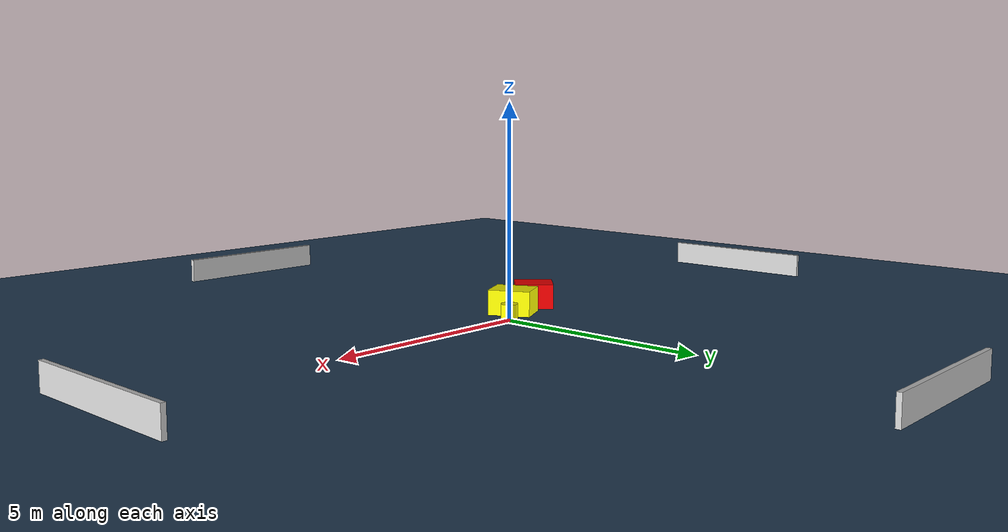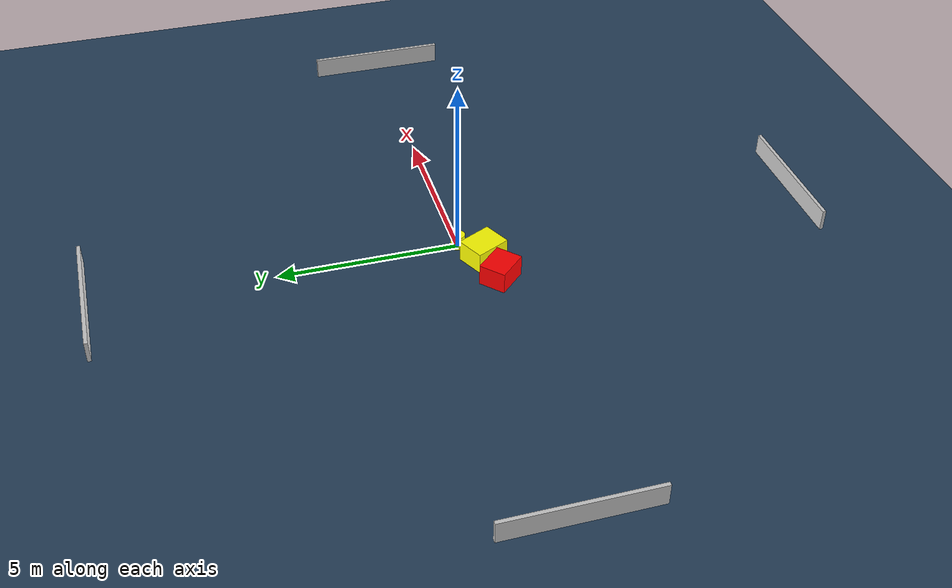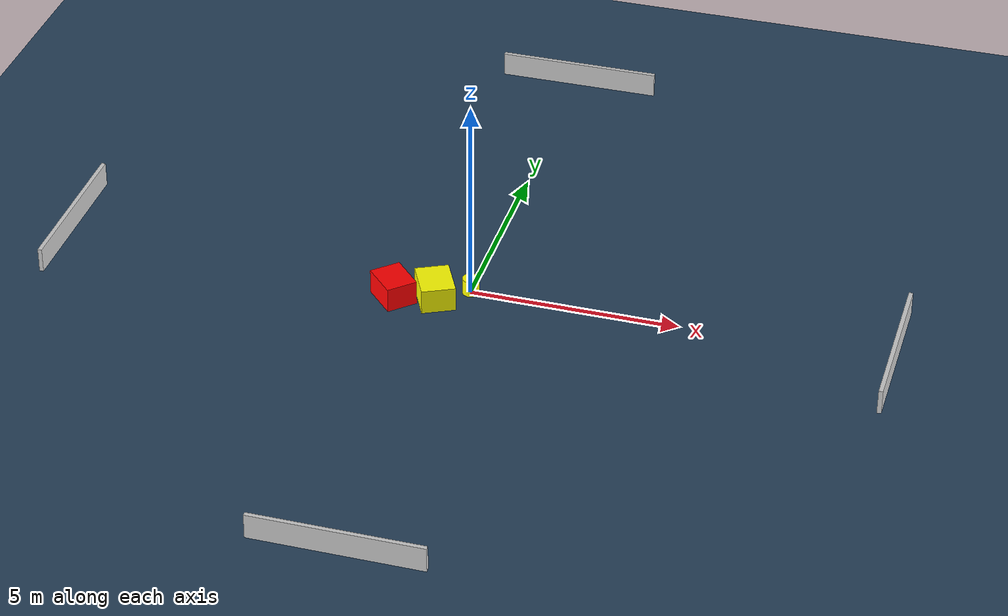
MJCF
<?xml version="1.0" ?>
<mujoco model="generated_environment">
  <option timestep="0.01" integrator="RK4" cone="elliptic"/>
  <default>
    <geom density="1"/>
  </default>
  <asset>
    <texture builtin="gradient" height="3072" name="skybox" rgb1="0.3 0.5 0.7" rgb2="0 0 0" type="skybox" width="512"/>
    <texture builtin="checker" height="300" name="groundplane" rgb1="0.2 0.3 0.4" rgb2="0.1 0.2 0.3" type="2d" width="300"/>
    <material name="groundplane" reflectance="0.2" texrepeat="5 5" texture="groundplane"/>
  </asset>
  <worldbody>
    <light dir="0 0 -1" directional="true" pos="0 0 1.5"/>
    <geom condim="3" friction="0.5 0.005 0.001" material="groundplane" name="floor" pos="0 0 0" size="0 0 0.05" type="plane"/>
    <body name="walls">
      <geom name="wall_1" condim="4" pos="-10.0 0.0 0.3" rgba="0.800000011920929 0.800000011920929 0.800000011920929 1.0" size="0.05 2.0 0.3" type="box"/>
      <geom name="wall_2" condim="4" pos="10.0 0.0 0.3" rgba="0.800000011920929 0.800000011920929 0.800000011920929 1.0" size="0.05 2.0 0.3" type="box"/>
      <geom name="wall_3" condim="4" pos="0.0 -10.0 0.3" rgba="0.800000011920929 0.800000011920929 0.800000011920929 1.0" size="2.0 0.05 0.3" type="box"/>
      <geom name="wall_4" condim="4" pos="0.0 10.0 0.3" rgba="0.800000011920929 0.800000011920929 0.800000011920929 1.0" size="2.0 0.05 0.3" type="box"/>
    </body>
    <body name="robot">
      <joint name="joint_x" type="slide" pos="0 0 0" axis="1 0 0"/>
      <joint name="joint_y" type="slide" pos="0 0 0" axis="0 1 0"/>
      <geom name="robot" type="cylinder" pos="0.0 0.0 0.2" size="0.2 0.2 0.0" mass="5.0" friction="1.0 0.005 0.0001" condim="4" rgba="1.0 1.0 0.0 1.0"/>
    </body>
    <body name="obstacle_1_movable">
      <geom name="obstacle_1_movable" condim="4" pos="-0.7120381641029011 -0.5243497260609732 0.3" euler="0 0 206.15492358827257" friction="0.0 0.005 0.001" rgba="1.0 1.0 0.0 1.0" size="0.40380447283512355 0.5018359529344281 0.3" type="box" mass="0.1"/>
      <joint type="free"/>
    </body>
    <body name="obstacle_2_static">
      <geom name="obstacle_2_static" condim="4" pos="-1.667992972629399 -0.7139761307487795 0.3" euler="0 0 313.36100854783336" friction="0.0 0.005 0.001" rgba="1.0 0.0 0.0 1.0" size="0.46244163284107326 0.3766864965370934 0.3" type="box"/>
    </body>
  </worldbody>
  <actuator>
    <motor name="actuator_x" joint="joint_x" gear="1" ctrlrange="-1 1"/>
    <motor name="actuator_y" joint="joint_y" gear="1" ctrlrange="-1 1"/>
  </actuator>
</mujoco>
